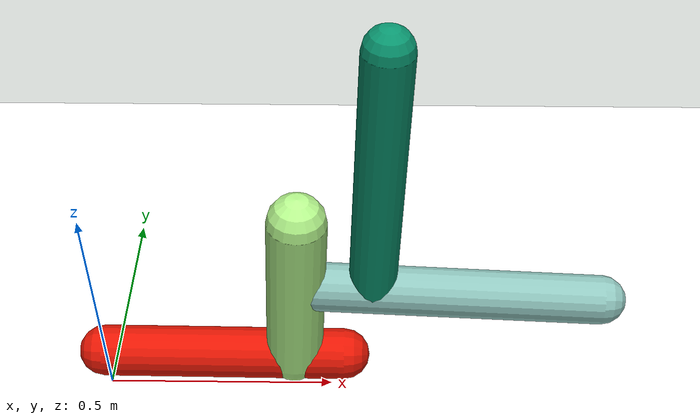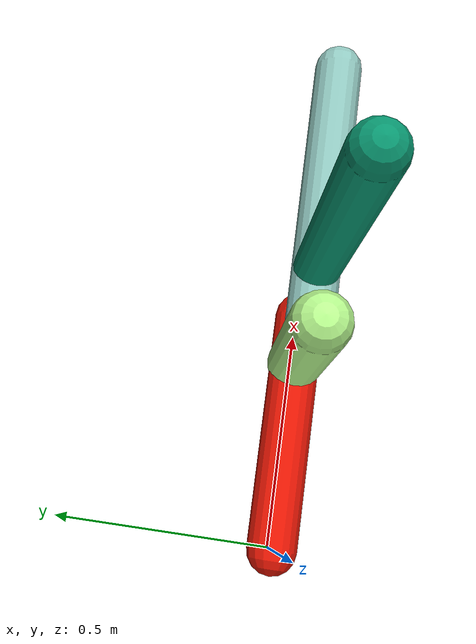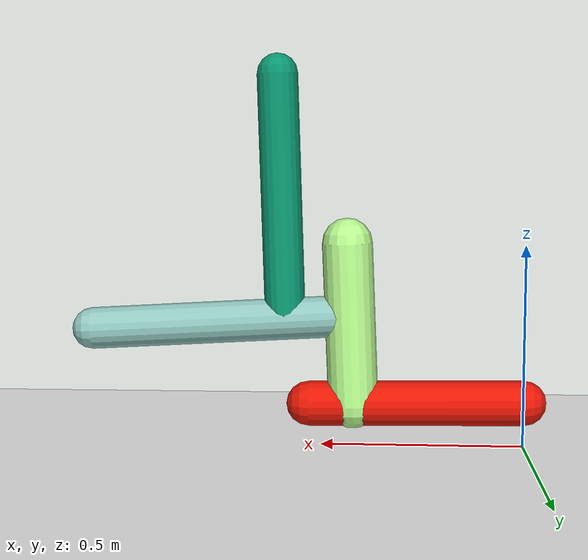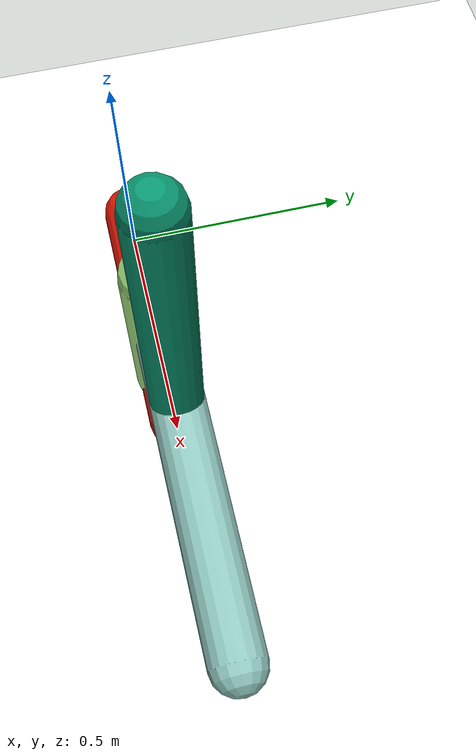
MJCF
<mujoco model="morphology">
  <option timestep="0.01"/>
  <default>
    <default class="/"/>
  </default>
  <asset>
    <texture name="texplane" type="2d" builtin="checker" rgb1="0.1 0.2 0.3" rgb2="0.2 0.3 0.4" width="300" height="300"/>
    <material name="MatPlane" class="/" texture="texplane" texrepeat="20 20" specular="1" shininess="1" reflectance="0.5"/>
  </asset>
  <worldbody>
    <light name="//unnamed_light_0" class="/" directional="true" pos="0 0 1.5" dir="0 0 -1.3" cutoff="1e+02" exponent="1" diffuse="1 1 1" specular="0.1 0.1 0.1"/>
    <geom name="ground" class="/" type="plane" size="15 15 0.5" material="MatPlane" rgba="1 1 1 1"/>
    <body name="body" pos="0 0 0.11">
      <geom name="geom0" class="/" type="capsule" contype="1" conaffinity="1" condim="3" size="0.056" rgba="0.9 0.088 0.017 1" friction="0.4 0.1 0.1" fromto="0 0 0 0.53 0 -0.0056"/>
      <body name="body1" pos="0.42 0 -0.0045">
        <geom name="geom1" class="/" type="capsule" contype="1" conaffinity="1" condim="3" size="0.062" rgba="0.71 0.97 0.55 1" friction="0.4 0.1 0.1" fromto="0 0 0 0.016 0 0.4"/>
        <body name="body2" pos="0.0089 0 0.22">
          <geom name="geom2" class="/" type="capsule" contype="1" conaffinity="1" condim="3" size="0.052" rgba="0.56 0.77 0.74 1" friction="0.4 0.1 0.1" fromto="0 0 0 0.64 0 -0.036"/>
          <body name="body3" pos="0.16 0 -0.0089">
            <geom name="geom3" class="/" type="capsule" contype="1" conaffinity="1" condim="3" size="0.05" rgba="0.028 0.58 0.43 1" friction="0.4 0.1 0.1" fromto="0 0 0 0.018 0 0.6"/>
            <joint name="joint3" class="/" type="hinge" axis="0 1 0" limited="true" stiffness="20" range="-43 43" armature="0.1" damping="2"/>
          </body>
          <joint name="joint2" class="/" type="hinge" axis="0 1 0" limited="true" stiffness="20" range="-51 51" armature="0.1" damping="2"/>
        </body>
        <joint name="joint1" class="/" type="hinge" axis="0 1 0" limited="true" stiffness="20" range="-68 68" armature="0.1" damping="2"/>
      </body>
      <joint name="rootx" class="/" type="slide" axis="1 0 0" limited="false" stiffness="0" armature="0" damping="0"/>
      <joint name="rootz" class="/" type="slide" axis="0 0 1" limited="false" stiffness="0" armature="0" damping="0"/>
      <joint name="rooty" class="/" type="hinge" axis="0 1 0" limited="false" stiffness="0" armature="0" damping="0"/>
    </body>
  </worldbody>
  <actuator>
    <motor name="motor3" class="/" ctrllimited="true" ctrlrange="-1 1" gear="1.7e+02" joint="joint3"/>
    <motor name="motor2" class="/" ctrllimited="true" ctrlrange="-1 1" gear="1.1e+02" joint="joint2"/>
    <motor name="motor1" class="/" ctrllimited="true" ctrlrange="-1 1" gear="1.8e+02" joint="joint1"/>
  </actuator>
  <sensor>
    <subtreelinvel name="velocity" body="body"/>
  </sensor>
</mujoco>
